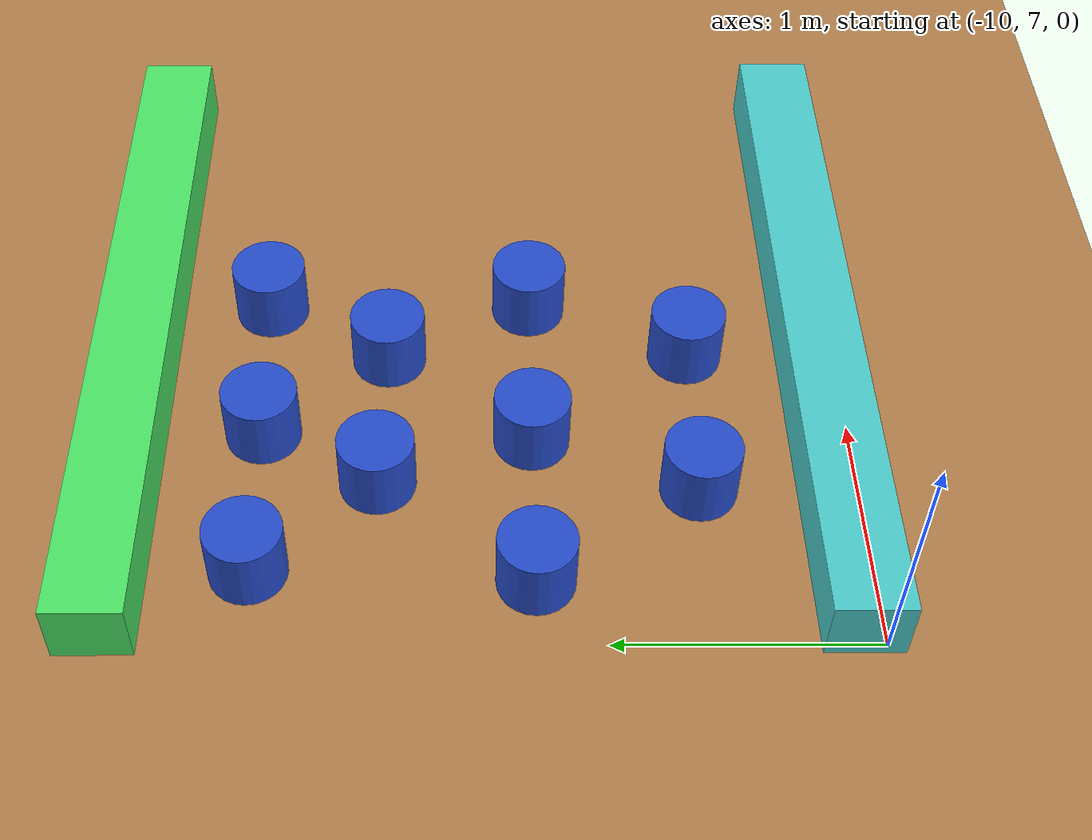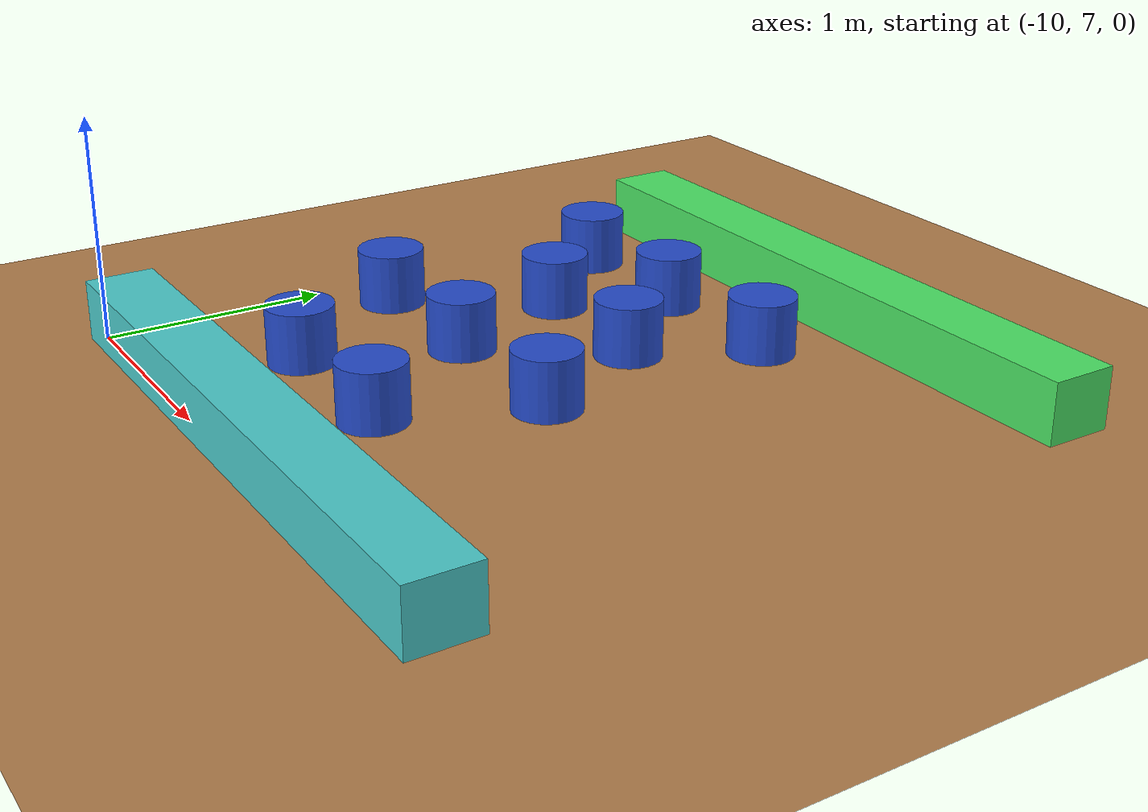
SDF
<sdf version="1.6">
 <world name="default">
  <model name="ground_plane">
   <pose>-8 8 0 0 -0 0</pose>
   <static>1</static>
   <link name="link">
    <collision name="collision">
     <geometry><plane><normal>0 0 1</normal><size>100 100</size></plane></geometry>
     <surface>
      <contact><collide_bitmask>65535</collide_bitmask></contact>
      <friction><ode><mu>100</mu><mu2>50</mu2></ode></friction>
     </surface>
    </collision>
    <visual name="visual">
     <cast_shadows>0</cast_shadows>
     <geometry><plane><normal>0 0 1</normal><size>20 20</size></plane></geometry>
     <material>
      <script><uri>file://media/materials/scripts/gazebo.material</uri><name>Gazebo/WoodFloor</name></script>
     </material>
    </visual>
   </link>
  </model>
  <model name="unit_cylinder_clone">
   <link name="link">
    <inertial>
     <mass>1</mass>
     <inertia><ixx>0.145833</ixx><ixy>0</ixy><ixz>0</ixz><iyy>0.145833</iyy><iyz>0</iyz><izz>0.125</izz></inertia>
    </inertial>
    <visual name="visual">
     <geometry><cylinder><radius>0.15</radius><length>0.267</length></cylinder></geometry>
     <material>
      <script><name>Gazebo/Blue</name><uri>file://media/materials/scripts/gazebo.material</uri></script>
      <shader type="pixel"><normal_map>__default__</normal_map></shader>
      <ambient>0.2 0.6 0.3 1</ambient>
      <diffuse>0.7 0.7 0.7 1</diffuse>
      <specular>0.01 0.01 0.01 1</specular>
      <emissive>0 0 0 1</emissive>
     </material>
    </visual>
    <collision name="collision">
     <geometry><cylinder><radius>0.15</radius><length>0.267</length></cylinder></geometry>
     <surface>
      <friction>
       <ode><mu>1</mu><mu2>1</mu2><fdir1>0 0 0</fdir1><slip1>0</slip1><slip2>0</slip2></ode>
       <torsional>
        <coefficient>1</coefficient>
        <patch_radius>0</patch_radius>
        <surface_radius>0</surface_radius>
        <use_patch_radius>1</use_patch_radius>
        <ode><slip>0</slip></ode>
       </torsional>
      </friction>
      <bounce><restitution_coefficient>0</restitution_coefficient><threshold>1e+06</threshold></bounce>
      <contact>
       <collide_without_contact>0</collide_without_contact>
       <collide_without_contact_bitmask>1</collide_without_contact_bitmask>
       <collide_bitmask>1</collide_bitmask>
       <ode>
        <soft_cfm>0</soft_cfm>
        <soft_erp>0.2</soft_erp>
        <kp>1e+13</kp>
        <kd>1</kd>
        <max_vel>0.01</max_vel>
        <min_depth>0</min_depth>
       </ode>
       <bullet>
        <split_impulse>1</split_impulse>
        <split_impulse_penetration_threshold>-0.01</split_impulse_penetration_threshold>
        <soft_cfm>0</soft_cfm>
        <soft_erp>0.2</soft_erp>
        <kp>1e+13</kp>
        <kd>1</kd>
       </bullet>
      </contact>
     </surface>
    </collision>
   </link>
   <static>0</static>
   <pose>-9.67394 9.32183 0.133499 2e-06 1e-06 0</pose>
  </model>
  <model name="unit_cylinder_clone_0">
   <link name="link">
    <inertial>
     <mass>1</mass>
     <inertia><ixx>0.145833</ixx><ixy>0</ixy><ixz>0</ixz><iyy>0.145833</iyy><iyz>0</iyz><izz>0.125</izz></inertia>
    </inertial>
    <visual name="visual">
     <geometry><cylinder><radius>0.15</radius><length>0.267</length></cylinder></geometry>
     <material>
      <script><name>Gazebo/Blue</name><uri>file://media/materials/scripts/gazebo.material</uri></script>
      <shader type="pixel"><normal_map>__default__</normal_map></shader>
      <ambient>0.2 0.6 0.3 1</ambient>
      <diffuse>0.7 0.7 0.7 1</diffuse>
      <specular>0.01 0.01 0.01 1</specular>
      <emissive>0 0 0 1</emissive>
     </material>
    </visual>
    <collision name="collision">
     <geometry><cylinder><radius>0.15</radius><length>0.267</length></cylinder></geometry>
     <surface>
      <friction>
       <ode><mu>1</mu><mu2>1</mu2><fdir1>0 0 0</fdir1><slip1>0</slip1><slip2>0</slip2></ode>
       <torsional>
        <coefficient>1</coefficient>
        <patch_radius>0</patch_radius>
        <surface_radius>0</surface_radius>
        <use_patch_radius>1</use_patch_radius>
        <ode><slip>0</slip></ode>
       </torsional>
      </friction>
      <bounce><restitution_coefficient>0</restitution_coefficient><threshold>1e+06</threshold></bounce>
      <contact>
       <collide_without_contact>0</collide_without_contact>
       <collide_without_contact_bitmask>1</collide_without_contact_bitmask>
       <collide_bitmask>1</collide_bitmask>
       <ode>
        <soft_cfm>0</soft_cfm>
        <soft_erp>0.2</soft_erp>
        <kp>1e+13</kp>
        <kd>1</kd>
        <max_vel>0.01</max_vel>
        <min_depth>0</min_depth>
       </ode>
       <bullet>
        <split_impulse>1</split_impulse>
        <split_impulse_penetration_threshold>-0.01</split_impulse_penetration_threshold>
        <soft_cfm>0</soft_cfm>
        <soft_erp>0.2</soft_erp>
        <kp>1e+13</kp>
        <kd>1</kd>
       </bullet>
      </contact>
     </surface>
    </collision>
   </link>
   <static>0</static>
   <pose>-9.02149 9.31576 0.133499 2e-06 1e-06 0</pose>
  </model>
  <model name="unit_cylinder_clone_1">
   <link name="link">
    <inertial>
     <mass>1</mass>
     <inertia><ixx>0.145833</ixx><ixy>0</ixy><ixz>0</ixz><iyy>0.145833</iyy><iyz>0</iyz><izz>0.125</izz></inertia>
    </inertial>
    <visual name="visual">
     <geometry><cylinder><radius>0.15</radius><length>0.267</length></cylinder></geometry>
     <material>
      <script><name>Gazebo/Blue</name><uri>file://media/materials/scripts/gazebo.material</uri></script>
      <shader type="pixel"><normal_map>__default__</normal_map></shader>
      <ambient>0.2 0.6 0.3 1</ambient>
      <diffuse>0.7 0.7 0.7 1</diffuse>
      <specular>0.01 0.01 0.01 1</specular>
      <emissive>0 0 0 1</emissive>
     </material>
    </visual>
    <collision name="collision">
     <geometry><cylinder><radius>0.15</radius><length>0.267</length></cylinder></geometry>
     <surface>
      <friction>
       <ode><mu>1</mu><mu2>1</mu2><fdir1>0 0 0</fdir1><slip1>0</slip1><slip2>0</slip2></ode>
       <torsional>
        <coefficient>1</coefficient>
        <patch_radius>0</patch_radius>
        <surface_radius>0</surface_radius>
        <use_patch_radius>1</use_patch_radius>
        <ode><slip>0</slip></ode>
       </torsional>
      </friction>
      <bounce><restitution_coefficient>0</restitution_coefficient><threshold>1e+06</threshold></bounce>
      <contact>
       <collide_without_contact>0</collide_without_contact>
       <collide_without_contact_bitmask>1</collide_without_contact_bitmask>
       <collide_bitmask>1</collide_bitmask>
       <ode>
        <soft_cfm>0</soft_cfm>
        <soft_erp>0.2</soft_erp>
        <kp>1e+13</kp>
        <kd>1</kd>
        <max_vel>0.01</max_vel>
        <min_depth>0</min_depth>
       </ode>
       <bullet>
        <split_impulse>1</split_impulse>
        <split_impulse_penetration_threshold>-0.01</split_impulse_penetration_threshold>
        <soft_cfm>0</soft_cfm>
        <soft_erp>0.2</soft_erp>
        <kp>1e+13</kp>
        <kd>1</kd>
       </bullet>
      </contact>
     </surface>
    </collision>
   </link>
   <static>0</static>
   <pose>-8.34806 9.32994 0.133499 2e-06 1e-06 0</pose>
  </model>
  <model name="unit_cylinder_clone_4">
   <link name="link">
    <inertial>
     <mass>1</mass>
     <inertia><ixx>0.145833</ixx><ixy>0</ixy><ixz>0</ixz><iyy>0.145833</iyy><iyz>0</iyz><izz>0.125</izz></inertia>
    </inertial>
    <visual name="visual">
     <geometry><cylinder><radius>0.15</radius><length>0.267</length></cylinder></geometry>
     <material>
      <script><name>Gazebo/Blue</name><uri>file://media/materials/scripts/gazebo.material</uri></script>
      <shader type="pixel"><normal_map>__default__</normal_map></shader>
      <ambient>0.2 0.6 0.3 1</ambient>
      <diffuse>0.7 0.7 0.7 1</diffuse>
      <specular>0.01 0.01 0.01 1</specular>
      <emissive>0 0 0 1</emissive>
     </material>
    </visual>
    <collision name="collision">
     <geometry><cylinder><radius>0.15</radius><length>0.267</length></cylinder></geometry>
     <surface>
      <friction>
       <ode><mu>1</mu><mu2>1</mu2><fdir1>0 0 0</fdir1><slip1>0</slip1><slip2>0</slip2></ode>
       <torsional>
        <coefficient>1</coefficient>
        <patch_radius>0</patch_radius>
        <surface_radius>0</surface_radius>
        <use_patch_radius>1</use_patch_radius>
        <ode><slip>0</slip></ode>
       </torsional>
      </friction>
      <bounce><restitution_coefficient>0</restitution_coefficient><threshold>1e+06</threshold></bounce>
      <contact>
       <collide_without_contact>0</collide_without_contact>
       <collide_without_contact_bitmask>1</collide_without_contact_bitmask>
       <collide_bitmask>1</collide_bitmask>
       <ode>
        <soft_cfm>0</soft_cfm>
        <soft_erp>0.2</soft_erp>
        <kp>1e+13</kp>
        <kd>1</kd>
        <max_vel>0.01</max_vel>
        <min_depth>0</min_depth>
       </ode>
       <bullet>
        <split_impulse>1</split_impulse>
        <split_impulse_penetration_threshold>-0.01</split_impulse_penetration_threshold>
        <soft_cfm>0</soft_cfm>
        <soft_erp>0.2</soft_erp>
        <kp>1e+13</kp>
        <kd>1</kd>
       </bullet>
      </contact>
     </surface>
    </collision>
   </link>
   <static>0</static>
   <pose>-9.26743 8.85592 0.133499 2e-06 1e-06 0</pose>
  </model>
  <model name="unit_cylinder_clone_5">
   <link name="link">
    <inertial>
     <mass>1</mass>
     <inertia><ixx>0.145833</ixx><ixy>0</ixy><ixz>0</ixz><iyy>0.145833</iyy><iyz>0</iyz><izz>0.125</izz></inertia>
    </inertial>
    <visual name="visual">
     <geometry><cylinder><radius>0.15</radius><length>0.267</length></cylinder></geometry>
     <material>
      <script><name>Gazebo/Blue</name><uri>file://media/materials/scripts/gazebo.material</uri></script>
      <shader type="pixel"><normal_map>__default__</normal_map></shader>
      <ambient>0.2 0.6 0.3 1</ambient>
      <diffuse>0.7 0.7 0.7 1</diffuse>
      <specular>0.01 0.01 0.01 1</specular>
      <emissive>0 0 0 1</emissive>
     </material>
    </visual>
    <collision name="collision">
     <geometry><cylinder><radius>0.15</radius><length>0.267</length></cylinder></geometry>
     <surface>
      <friction>
       <ode><mu>1</mu><mu2>1</mu2><fdir1>0 0 0</fdir1><slip1>0</slip1><slip2>0</slip2></ode>
       <torsional>
        <coefficient>1</coefficient>
        <patch_radius>0</patch_radius>
        <surface_radius>0</surface_radius>
        <use_patch_radius>1</use_patch_radius>
        <ode><slip>0</slip></ode>
       </torsional>
      </friction>
      <bounce><restitution_coefficient>0</restitution_coefficient><threshold>1e+06</threshold></bounce>
      <contact>
       <collide_without_contact>0</collide_without_contact>
       <collide_without_contact_bitmask>1</collide_without_contact_bitmask>
       <collide_bitmask>1</collide_bitmask>
       <ode>
        <soft_cfm>0</soft_cfm>
        <soft_erp>0.2</soft_erp>
        <kp>1e+13</kp>
        <kd>1</kd>
        <max_vel>0.01</max_vel>
        <min_depth>0</min_depth>
       </ode>
       <bullet>
        <split_impulse>1</split_impulse>
        <split_impulse_penetration_threshold>-0.01</split_impulse_penetration_threshold>
        <soft_cfm>0</soft_cfm>
        <soft_erp>0.2</soft_erp>
        <kp>1e+13</kp>
        <kd>1</kd>
       </bullet>
      </contact>
     </surface>
    </collision>
   </link>
   <static>0</static>
   <pose>-8.62685 8.82962 0.133492 -2e-06 -1e-06 0</pose>
  </model>
  <model name="unit_cylinder_clone_8">
   <link name="link">
    <inertial>
     <mass>1</mass>
     <inertia><ixx>0.145833</ixx><ixy>0</ixy><ixz>0</ixz><iyy>0.145833</iyy><iyz>0</iyz><izz>0.125</izz></inertia>
    </inertial>
    <visual name="visual">
     <geometry><cylinder><radius>0.15</radius><length>0.267</length></cylinder></geometry>
     <material>
      <script><name>Gazebo/Blue</name><uri>file://media/materials/scripts/gazebo.material</uri></script>
      <shader type="pixel"><normal_map>__default__</normal_map></shader>
      <ambient>0.2 0.6 0.3 1</ambient>
      <diffuse>0.7 0.7 0.7 1</diffuse>
      <specular>0.01 0.01 0.01 1</specular>
      <emissive>0 0 0 1</emissive>
     </material>
    </visual>
    <collision name="collision">
     <geometry><cylinder><radius>0.15</radius><length>0.267</length></cylinder></geometry>
     <surface>
      <friction>
       <ode><mu>1</mu><mu2>1</mu2><fdir1>0 0 0</fdir1><slip1>0</slip1><slip2>0</slip2></ode>
       <torsional>
        <coefficient>1</coefficient>
        <patch_radius>0</patch_radius>
        <surface_radius>0</surface_radius>
        <use_patch_radius>1</use_patch_radius>
        <ode><slip>0</slip></ode>
       </torsional>
      </friction>
      <bounce><restitution_coefficient>0</restitution_coefficient><threshold>1e+06</threshold></bounce>
      <contact>
       <collide_without_contact>0</collide_without_contact>
       <collide_without_contact_bitmask>1</collide_without_contact_bitmask>
       <collide_bitmask>1</collide_bitmask>
       <ode>
        <soft_cfm>0</soft_cfm>
        <soft_erp>0.2</soft_erp>
        <kp>1e+13</kp>
        <kd>1</kd>
        <max_vel>0.01</max_vel>
        <min_depth>0</min_depth>
       </ode>
       <bullet>
        <split_impulse>1</split_impulse>
        <split_impulse_penetration_threshold>-0.01</split_impulse_penetration_threshold>
        <soft_cfm>0</soft_cfm>
        <soft_erp>0.2</soft_erp>
        <kp>1e+13</kp>
        <kd>1</kd>
       </bullet>
      </contact>
     </surface>
    </collision>
   </link>
   <static>0</static>
   <pose>-9.72307 8.25556 0.133499 2e-06 1e-06 0</pose>
  </model>
  <model name="unit_cylinder_clone_9">
   <link name="link">
    <inertial>
     <mass>1</mass>
     <inertia><ixx>0.145833</ixx><ixy>0</ixy><ixz>0</ixz><iyy>0.145833</iyy><iyz>0</iyz><izz>0.125</izz></inertia>
    </inertial>
    <visual name="visual">
     <geometry><cylinder><radius>0.15</radius><length>0.267</length></cylinder></geometry>
     <material>
      <script><name>Gazebo/Blue</name><uri>file://media/materials/scripts/gazebo.material</uri></script>
      <shader type="pixel"><normal_map>__default__</normal_map></shader>
      <ambient>0.2 0.6 0.3 1</ambient>
      <diffuse>0.7 0.7 0.7 1</diffuse>
      <specular>0.01 0.01 0.01 1</specular>
      <emissive>0 0 0 1</emissive>
     </material>
    </visual>
    <collision name="collision">
     <geometry><cylinder><radius>0.15</radius><length>0.267</length></cylinder></geometry>
     <surface>
      <friction>
       <ode><mu>1</mu><mu2>1</mu2><fdir1>0 0 0</fdir1><slip1>0</slip1><slip2>0</slip2></ode>
       <torsional>
        <coefficient>1</coefficient>
        <patch_radius>0</patch_radius>
        <surface_radius>0</surface_radius>
        <use_patch_radius>1</use_patch_radius>
        <ode><slip>0</slip></ode>
       </torsional>
      </friction>
      <bounce><restitution_coefficient>0</restitution_coefficient><threshold>1e+06</threshold></bounce>
      <contact>
       <collide_without_contact>0</collide_without_contact>
       <collide_without_contact_bitmask>1</collide_without_contact_bitmask>
       <collide_bitmask>1</collide_bitmask>
       <ode>
        <soft_cfm>0</soft_cfm>
        <soft_erp>0.2</soft_erp>
        <kp>1e+13</kp>
        <kd>1</kd>
        <max_vel>0.01</max_vel>
        <min_depth>0</min_depth>
       </ode>
       <bullet>
        <split_impulse>1</split_impulse>
        <split_impulse_penetration_threshold>-0.01</split_impulse_penetration_threshold>
        <soft_cfm>0</soft_cfm>
        <soft_erp>0.2</soft_erp>
        <kp>1e+13</kp>
        <kd>1</kd>
       </bullet>
      </contact>
     </surface>
    </collision>
   </link>
   <static>0</static>
   <pose>-9.05755 8.25586 0.133499 2e-06 1e-06 0</pose>
  </model>
  <model name="unit_cylinder_clone_10">
   <link name="link">
    <inertial>
     <mass>1</mass>
     <inertia><ixx>0.145833</ixx><ixy>0</ixy><ixz>0</ixz><iyy>0.145833</iyy><iyz>0</iyz><izz>0.125</izz></inertia>
    </inertial>
    <visual name="visual">
     <geometry><cylinder><radius>0.15</radius><length>0.267</length></cylinder></geometry>
     <material>
      <script><name>Gazebo/Blue</name><uri>file://media/materials/scripts/gazebo.material</uri></script>
      <shader type="pixel"><normal_map>__default__</normal_map></shader>
      <ambient>0.2 0.6 0.3 1</ambient>
      <diffuse>0.7 0.7 0.7 1</diffuse>
      <specular>0.01 0.01 0.01 1</specular>
      <emissive>0 0 0 1</emissive>
     </material>
    </visual>
    <collision name="collision">
     <geometry><cylinder><radius>0.15</radius><length>0.267</length></cylinder></geometry>
     <surface>
      <friction>
       <ode><mu>1</mu><mu2>1</mu2><fdir1>0 0 0</fdir1><slip1>0</slip1><slip2>0</slip2></ode>
       <torsional>
        <coefficient>1</coefficient>
        <patch_radius>0</patch_radius>
        <surface_radius>0</surface_radius>
        <use_patch_radius>1</use_patch_radius>
        <ode><slip>0</slip></ode>
       </torsional>
      </friction>
      <bounce><restitution_coefficient>0</restitution_coefficient><threshold>1e+06</threshold></bounce>
      <contact>
       <collide_without_contact>0</collide_without_contact>
       <collide_without_contact_bitmask>1</collide_without_contact_bitmask>
       <collide_bitmask>1</collide_bitmask>
       <ode>
        <soft_cfm>0</soft_cfm>
        <soft_erp>0.2</soft_erp>
        <kp>1e+13</kp>
        <kd>1</kd>
        <max_vel>0.01</max_vel>
        <min_depth>0</min_depth>
       </ode>
       <bullet>
        <split_impulse>1</split_impulse>
        <split_impulse_penetration_threshold>-0.01</split_impulse_penetration_threshold>
        <soft_cfm>0</soft_cfm>
        <soft_erp>0.2</soft_erp>
        <kp>1e+13</kp>
        <kd>1</kd>
       </bullet>
      </contact>
     </surface>
    </collision>
   </link>
   <static>0</static>
   <pose>-8.34804 8.25306 0.133492 -2e-06 -1e-06 0</pose>
  </model>
  <model name="unit_cylinder_clone_12">
   <link name="link">
    <inertial>
     <mass>1</mass>
     <inertia><ixx>0.145833</ixx><ixy>0</ixy><ixz>0</ixz><iyy>0.145833</iyy><iyz>0</iyz><izz>0.125</izz></inertia>
    </inertial>
    <visual name="visual">
     <geometry><cylinder><radius>0.15</radius><length>0.267</length></cylinder></geometry>
     <material>
      <script><name>Gazebo/Blue</name><uri>file://media/materials/scripts/gazebo.material</uri></script>
      <shader type="pixel"><normal_map>__default__</normal_map></shader>
      <ambient>0.2 0.6 0.3 1</ambient>
      <diffuse>0.7 0.7 0.7 1</diffuse>
      <specular>0.01 0.01 0.01 1</specular>
      <emissive>0 0 0 1</emissive>
     </material>
    </visual>
    <collision name="collision">
     <geometry><cylinder><radius>0.15</radius><length>0.267</length></cylinder></geometry>
     <surface>
      <friction>
       <ode><mu>1</mu><mu2>1</mu2><fdir1>0 0 0</fdir1><slip1>0</slip1><slip2>0</slip2></ode>
       <torsional>
        <coefficient>1</coefficient>
        <patch_radius>0</patch_radius>
        <surface_radius>0</surface_radius>
        <use_patch_radius>1</use_patch_radius>
        <ode><slip>0</slip></ode>
       </torsional>
      </friction>
      <bounce><restitution_coefficient>0</restitution_coefficient><threshold>1e+06</threshold></bounce>
      <contact>
       <collide_without_contact>0</collide_without_contact>
       <collide_without_contact_bitmask>1</collide_without_contact_bitmask>
       <collide_bitmask>1</collide_bitmask>
       <ode>
        <soft_cfm>0</soft_cfm>
        <soft_erp>0.2</soft_erp>
        <kp>1e+13</kp>
        <kd>1</kd>
        <max_vel>0.01</max_vel>
        <min_depth>0</min_depth>
       </ode>
       <bullet>
        <split_impulse>1</split_impulse>
        <split_impulse_penetration_threshold>-0.01</split_impulse_penetration_threshold>
        <soft_cfm>0</soft_cfm>
        <soft_erp>0.2</soft_erp>
        <kp>1e+13</kp>
        <kd>1</kd>
       </bullet>
      </contact>
     </surface>
    </collision>
   </link>
   <static>0</static>
   <pose>-9.30458 7.61829 0.133492 -2e-06 -1e-06 0</pose>
  </model>
  <model name="unit_cylinder_clone_13">
   <link name="link">
    <inertial>
     <mass>1</mass>
     <inertia><ixx>0.145833</ixx><ixy>0</ixy><ixz>0</ixz><iyy>0.145833</iyy><iyz>0</iyz><izz>0.125</izz></inertia>
    </inertial>
    <visual name="visual">
     <geometry><cylinder><radius>0.15</radius><length>0.267</length></cylinder></geometry>
     <material>
      <script><name>Gazebo/Blue</name><uri>file://media/materials/scripts/gazebo.material</uri></script>
      <shader type="pixel"><normal_map>__default__</normal_map></shader>
      <ambient>0.2 0.6 0.3 1</ambient>
      <diffuse>0.7 0.7 0.7 1</diffuse>
      <specular>0.01 0.01 0.01 1</specular>
      <emissive>0 0 0 1</emissive>
     </material>
    </visual>
    <collision name="collision">
     <geometry><cylinder><radius>0.15</radius><length>0.267</length></cylinder></geometry>
     <surface>
      <friction>
       <ode><mu>1</mu><mu2>1</mu2><fdir1>0 0 0</fdir1><slip1>0</slip1><slip2>0</slip2></ode>
       <torsional>
        <coefficient>1</coefficient>
        <patch_radius>0</patch_radius>
        <surface_radius>0</surface_radius>
        <use_patch_radius>1</use_patch_radius>
        <ode><slip>0</slip></ode>
       </torsional>
      </friction>
      <bounce><restitution_coefficient>0</restitution_coefficient><threshold>1e+06</threshold></bounce>
      <contact>
       <collide_without_contact>0</collide_without_contact>
       <collide_without_contact_bitmask>1</collide_without_contact_bitmask>
       <collide_bitmask>1</collide_bitmask>
       <ode>
        <soft_cfm>0</soft_cfm>
        <soft_erp>0.2</soft_erp>
        <kp>1e+13</kp>
        <kd>1</kd>
        <max_vel>0.01</max_vel>
        <min_depth>0</min_depth>
       </ode>
       <bullet>
        <split_impulse>1</split_impulse>
        <split_impulse_penetration_threshold>-0.01</split_impulse_penetration_threshold>
        <soft_cfm>0</soft_cfm>
        <soft_erp>0.2</soft_erp>
        <kp>1e+13</kp>
        <kd>1</kd>
       </bullet>
      </contact>
     </surface>
    </collision>
   </link>
   <static>0</static>
   <pose>-8.61531 7.61622 0.133499 2e-06 2e-06 0</pose>
  </model>
  <model name="unit_box_0">
   <link name="link_3">
    <inertial>
     <mass>1</mass>
     <inertia>
      <ixx>0.166667</ixx>
      <ixy>0</ixy>
      <ixz>0</ixz>
      <iyy>0.166667</iyy>
      <iyz>0</iyz>
      <izz>0.166667</izz>
     </inertia>
    </inertial>
    <pose>-0.132192 0.118052 0 0 -0 0</pose>
    <visual name="visual">
     <geometry><box><size>3 0.3 0.27</size></box></geometry>
     <material>
      <lighting>1</lighting>
      <script><uri>file://media/materials/scripts/gazebo.material</uri><name>Gazebo/Grey</name></script>
      <shader type="pixel"><normal_map>__default__</normal_map></shader>
      <ambient>0.3 0.9 0.4 1</ambient>
      <diffuse>0.7 0.7 0.7 1</diffuse>
      <specular>0.01 0.01 0.01 1</specular>
      <emissive>0 0 0 1</emissive>
     </material>
    </visual>
    <collision name="collision">
     <geometry><box><size>3 0.3 0.27</size></box></geometry>
     <surface>
      <friction>
       <ode><mu>1</mu><mu2>1</mu2><fdir1>0 0 0</fdir1><slip1>0</slip1><slip2>0</slip2></ode>
       <torsional>
        <coefficient>1</coefficient>
        <patch_radius>0</patch_radius>
        <surface_radius>0</surface_radius>
        <use_patch_radius>1</use_patch_radius>
        <ode><slip>0</slip></ode>
       </torsional>
      </friction>
      <bounce><restitution_coefficient>0</restitution_coefficient><threshold>1e+06</threshold></bounce>
      <contact>
       <collide_without_contact>0</collide_without_contact>
       <collide_without_contact_bitmask>1</collide_without_contact_bitmask>
       <collide_bitmask>1</collide_bitmask>
       <ode>
        <soft_cfm>0</soft_cfm>
        <soft_erp>0.2</soft_erp>
        <kp>1e+13</kp>
        <kd>1</kd>
        <max_vel>0.01</max_vel>
        <min_depth>0</min_depth>
       </ode>
       <bullet>
        <split_impulse>1</split_impulse>
        <split_impulse_penetration_threshold>-0.01</split_impulse_penetration_threshold>
        <soft_cfm>0</soft_cfm>
        <soft_erp>0.2</soft_erp>
        <kp>1e+13</kp>
        <kd>1</kd>
       </bullet>
      </contact>
     </surface>
    </collision>
   </link>
   <static>0</static>
   <pose>-8.4 9.73 0.135 0 -0 0</pose>
  </model>
  <model name="unit_box_0_clone">
   <link name="link_3">
    <inertial>
     <mass>1</mass>
     <inertia>
      <ixx>0.166667</ixx>
      <ixy>0</ixy>
      <ixz>0</ixz>
      <iyy>0.166667</iyy>
      <iyz>0</iyz>
      <izz>0.166667</izz>
     </inertia>
    </inertial>
    <pose>-0.132192 0.118052 0 0 -0 0</pose>
    <visual name="visual">
     <geometry><box><size>3 0.3 0.27</size></box></geometry>
     <material>
      <lighting>1</lighting>
      <script><uri>file://media/materials/scripts/gazebo.material</uri><name>Gazebo/Grey</name></script>
      <shader type="pixel"><normal_map>__default__</normal_map></shader>
      <ambient>0.3 0.8 0.2 1</ambient>
      <diffuse>0.3 0.8 0.8 1</diffuse>
      <specular>0.01 0.01 0.01 1</specular>
      <emissive>0 0 0 1</emissive>
     </material>
    </visual>
    <collision name="collision">
     <geometry><box><size>3 0.3 0.27</size></box></geometry>
     <surface>
      <friction>
       <ode><mu>1</mu><mu2>1</mu2><fdir1>0 0 0</fdir1><slip1>0</slip1><slip2>0</slip2></ode>
       <torsional>
        <coefficient>1</coefficient>
        <patch_radius>0</patch_radius>
        <surface_radius>0</surface_radius>
        <use_patch_radius>1</use_patch_radius>
        <ode><slip>0</slip></ode>
       </torsional>
      </friction>
      <bounce><restitution_coefficient>0</restitution_coefficient><threshold>1e+06</threshold></bounce>
      <contact>
       <collide_without_contact>0</collide_without_contact>
       <collide_without_contact_bitmask>1</collide_without_contact_bitmask>
       <collide_bitmask>1</collide_bitmask>
       <ode>
        <soft_cfm>0</soft_cfm>
        <soft_erp>0.2</soft_erp>
        <kp>1e+13</kp>
        <kd>1</kd>
        <max_vel>0.01</max_vel>
        <min_depth>0</min_depth>
       </ode>
       <bullet>
        <split_impulse>1</split_impulse>
        <split_impulse_penetration_threshold>-0.01</split_impulse_penetration_threshold>
        <soft_cfm>0</soft_cfm>
        <soft_erp>0.2</soft_erp>
        <kp>1e+13</kp>
        <kd>1</kd>
       </bullet>
      </contact>
     </surface>
    </collision>
   </link>
   <static>0</static>
   <pose>-8.4 6.97 0.135 0 -0 0</pose>
  </model>
 </world>
</sdf>
